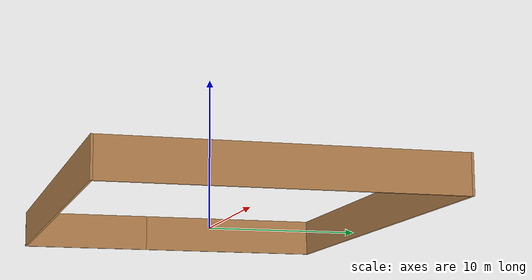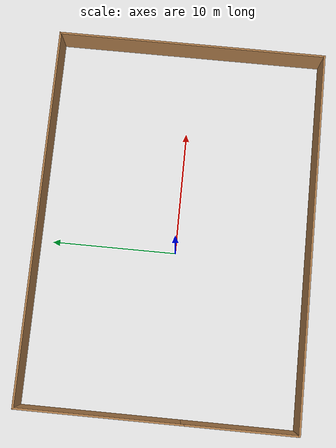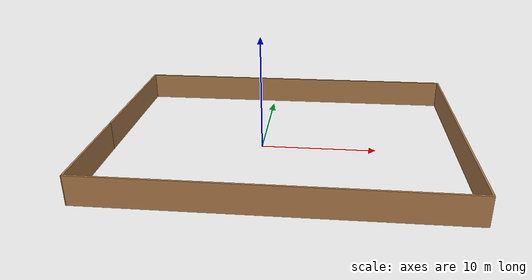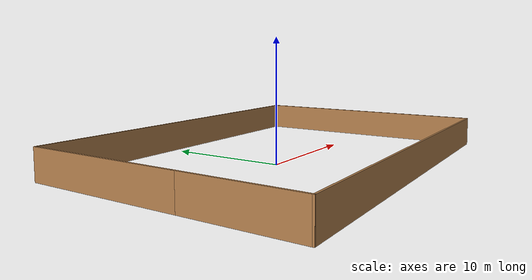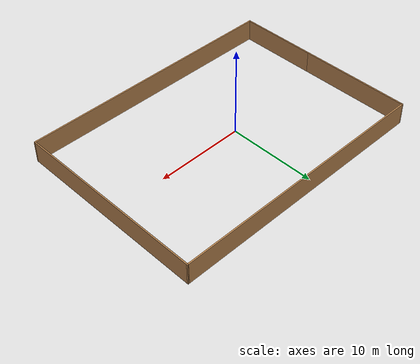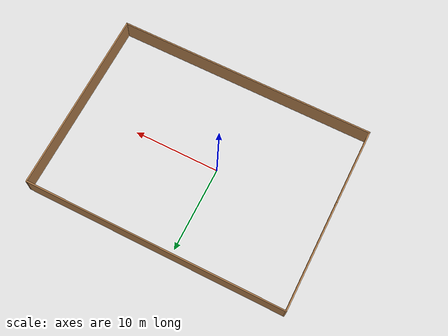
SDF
<?xml version='1.0'?>
<sdf version='1.7'>
  <model name='wall1'>
    <pose>1.94173 0.213966 0 0 -0 0</pose>
    <link name='Wall_20'>
      <collision name='Wall_20_Collision'>
        <geometry>
          <box>
            <size>9 0.15 2.5</size>
          </box>
        </geometry>
        <pose>0 0 1.25 0 -0 0</pose>
      </collision>
      <visual name='Wall_20_Visual'>
        <pose>0 0 1.25 0 -0 0</pose>
        <geometry>
          <box>
            <size>9 0.15 2.5</size>
          </box>
        </geometry>
        <material>
          <script>
            <uri>file://media/materials/scripts/gazebo.material</uri>
            <name>Gazebo/Wood</name>
          </script>
          <ambient>1 1 1 1</ambient>
        </material>
        <meta>
          <layer>0</layer>
        </meta>
      </visual>
      <pose>-15.0053 -6.34822 0 0 -0 -1.5708</pose>
    </link>
    <link name='Wall_21'>
      <collision name='Wall_21_Collision'>
        <geometry>
          <box>
            <size>30.1609 0.15 2.5</size>
          </box>
        </geometry>
        <pose>0 0 1.25 0 -0 0</pose>
      </collision>
      <visual name='Wall_21_Visual'>
        <pose>0 0 1.25 0 -0 0</pose>
        <geometry>
          <box>
            <size>30.1609 0.15 2.5</size>
          </box>
        </geometry>
        <material>
          <script>
            <uri>file://media/materials/scripts/gazebo.material</uri>
            <name>Gazebo/Wood</name>
          </script>
          <ambient>1 1 1 1</ambient>
        </material>
        <meta>
          <layer>0</layer>
        </meta>
      </visual>
      <pose>-7.3e-05 -10.8 0 0 -0 -0.001783</pose>
    </link>
    <link name='Wall_22'>
      <collision name='Wall_22_Collision'>
        <geometry>
          <box>
            <size>21.75 0.15 2.5</size>
          </box>
        </geometry>
        <pose>0 0 1.25 0 -0 0</pose>
      </collision>
      <visual name='Wall_22_Visual'>
        <pose>0 0 1.25 0 -0 0</pose>
        <geometry>
          <box>
            <size>21.75 0.15 2.5</size>
          </box>
        </geometry>
        <material>
          <script>
            <uri>file://media/materials/scripts/gazebo.material</uri>
            <name>Gazebo/Wood</name>
          </script>
          <ambient>1 1 1 1</ambient>
        </material>
        <meta>
          <layer>0</layer>
        </meta>
      </visual>
      <pose>15.0052 0.026781 0 0 -0 1.5708</pose>
    </link>
    <link name='Wall_23'>
      <collision name='Wall_23_Collision'>
        <geometry>
          <box>
            <size>30.1078 0.15 2.5</size>
          </box>
        </geometry>
        <pose>0 0 1.25 0 -0 0</pose>
      </collision>
      <visual name='Wall_23_Visual'>
        <pose>0 0 1.25 0 -0 0</pose>
        <geometry>
          <box>
            <size>30.1078 0.15 2.5</size>
          </box>
        </geometry>
        <material>
          <script>
            <uri>file://media/materials/scripts/gazebo.material</uri>
            <name>Gazebo/Wood</name>
          </script>
          <ambient>1 1 1 1</ambient>
        </material>
        <meta>
          <layer>0</layer>
        </meta>
      </visual>
      <pose>0.026678 10.8122 0 0 -0 -3.14062</pose>
    </link>
    <link name='Wall_24'>
      <collision name='Wall_24_Collision'>
        <geometry>
          <box>
            <size>13 0.15 2.5</size>
          </box>
        </geometry>
        <pose>0 0 1.25 0 -0 0</pose>
      </collision>
      <visual name='Wall_24_Visual'>
        <pose>0 0 1.25 0 -0 0</pose>
        <geometry>
          <box>
            <size>13 0.15 2.5</size>
          </box>
        </geometry>
        <material>
          <script>
            <uri>file://media/materials/scripts/gazebo.material</uri>
            <name>Gazebo/Wood</name>
          </script>
          <ambient>1 1 1 1</ambient>
        </material>
        <meta>
          <layer>0</layer>
        </meta>
      </visual>
      <pose>-15.0053 4.37269 0 0 -0 -1.5708</pose>
    </link>
    <static>1</static>
  </model>
</sdf>
